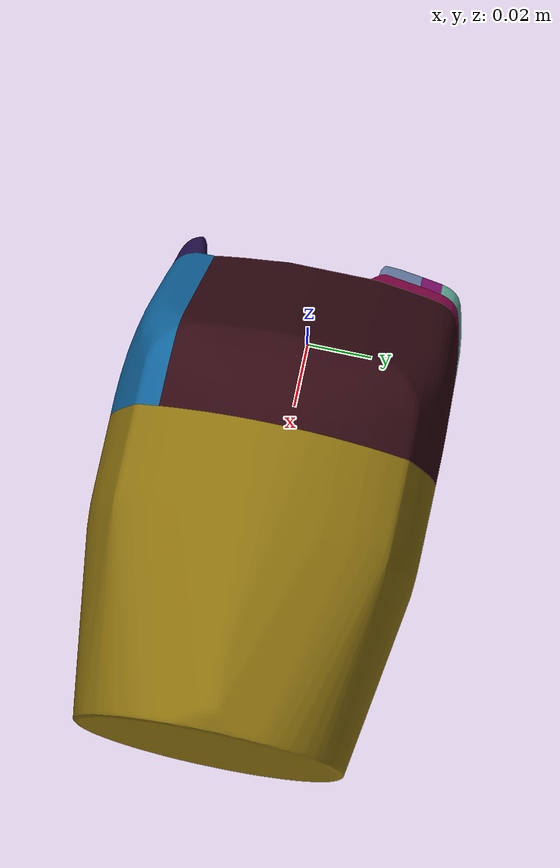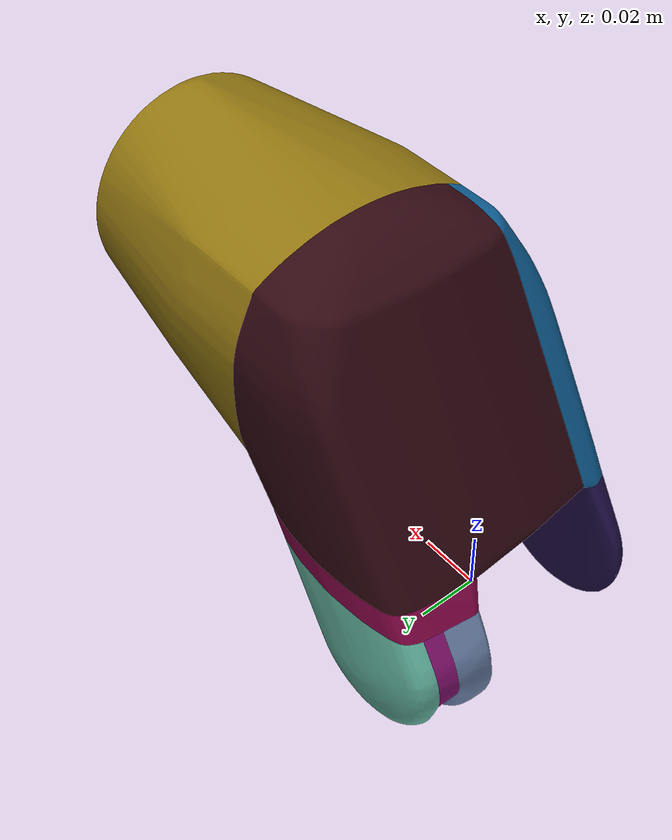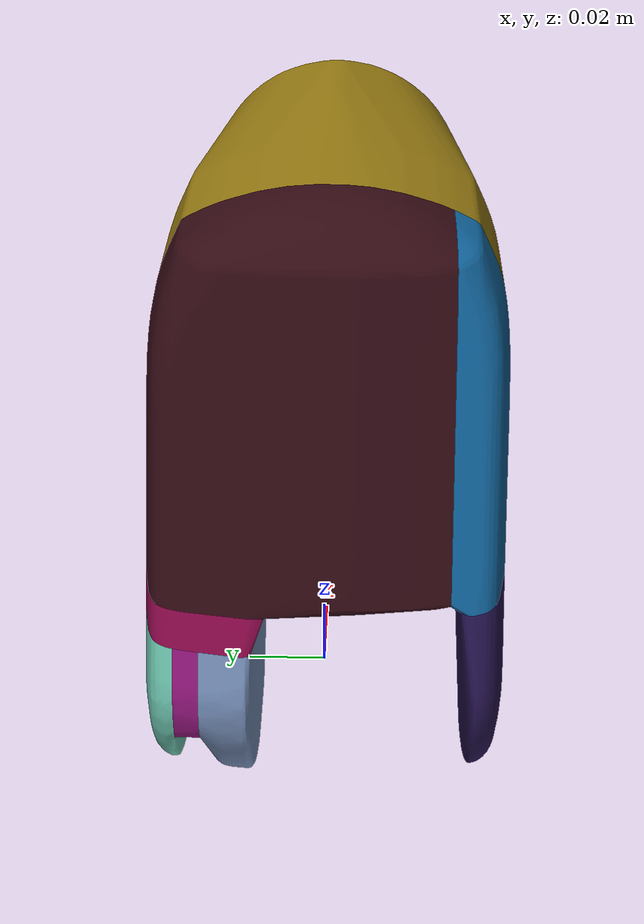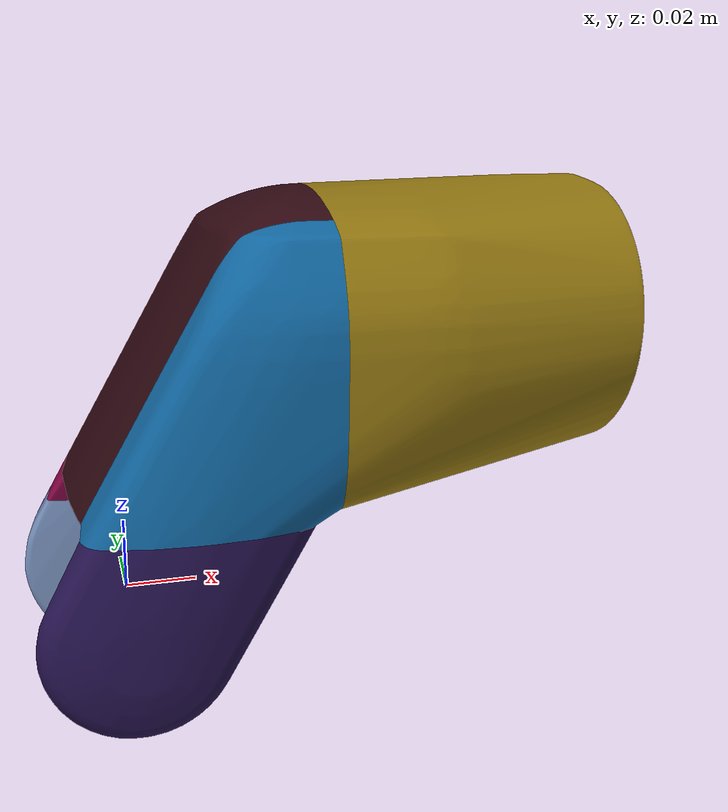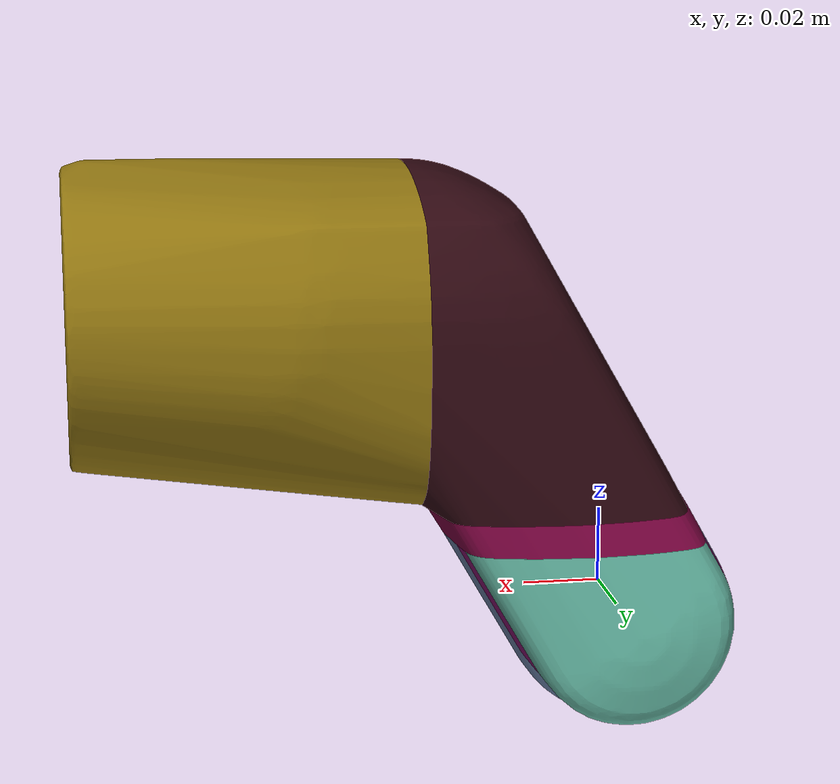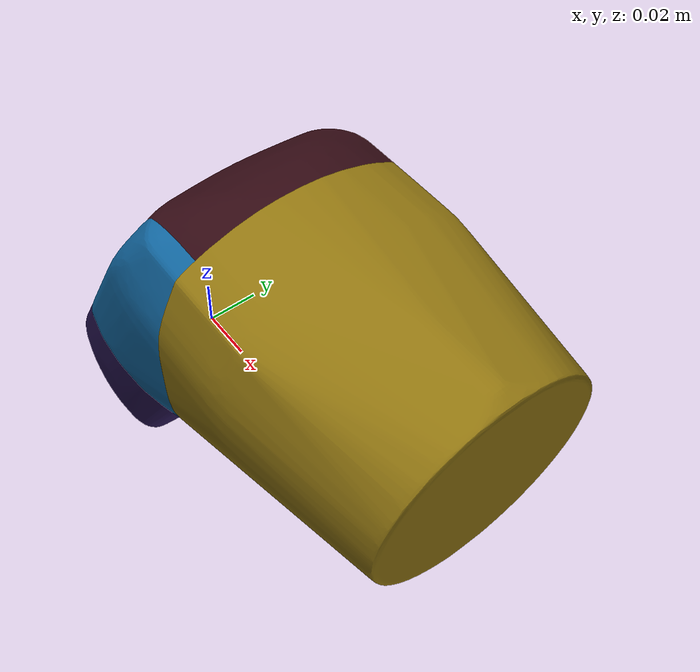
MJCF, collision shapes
<mujoco model="arm_link_el0">
  <default>
    <default class="visual">
      <geom group="2" type="mesh" contype="0" conaffinity="0"/>
    </default>
    <default class="collision">
      <geom group="3" type="mesh"/>
    </default>
  </default>
  <asset>
    <material name="material_0" specular="1.0" shininess="0.2" rgba="0.27450980 0.27450980 0.27450980 1.0"/>
    <mesh file="arm_link_el0.obj"/>
    <mesh file="arm_link_el0_collision_0.obj"/>
    <mesh file="arm_link_el0_collision_1.obj"/>
    <mesh file="arm_link_el0_collision_2.obj"/>
    <mesh file="arm_link_el0_collision_3.obj"/>
    <mesh file="arm_link_el0_collision_4.obj"/>
    <mesh file="arm_link_el0_collision_5.obj"/>
    <mesh file="arm_link_el0_collision_6.obj"/>
    <mesh file="arm_link_el0_collision_7.obj"/>
  </asset>
  <worldbody>
    <body name="arm_link_el0">
      <geom material="material_0" mesh="arm_link_el0" class="visual"/>
      <geom mesh="arm_link_el0_collision_0" rgba="0.14537883226150639 0.07304031148847145 0.3059713383378655 1" class="collision"/>
      <geom mesh="arm_link_el0_collision_1" rgba="0.5623320049737267 0.4561821666053738 0.0638910897722007 1" class="collision"/>
      <geom mesh="arm_link_el0_collision_2" rgba="0.5421424482848506 0.02431753386936486 0.2843653849952138 1" class="collision"/>
      <geom mesh="arm_link_el0_collision_3" rgba="0.06207057132363458 0.39119450375122766 0.6131868860504345 1" class="collision"/>
      <geom mesh="arm_link_el0_collision_4" rgba="0.18992594152167197 0.034750009022467054 0.07096138108734928 1" class="collision"/>
      <geom mesh="arm_link_el0_collision_5" rgba="0.44728606839368845 0.5424845634280976 0.7074619563186242 1" class="collision"/>
      <geom mesh="arm_link_el0_collision_6" rgba="0.5601998474783682 0.07633816935654336 0.47144526816990084 1" class="collision"/>
      <geom mesh="arm_link_el0_collision_7" rgba="0.41446861712799876 0.7561463993066958 0.6725207254429776 1" class="collision"/>
    </body>
  </worldbody>
</mujoco>
